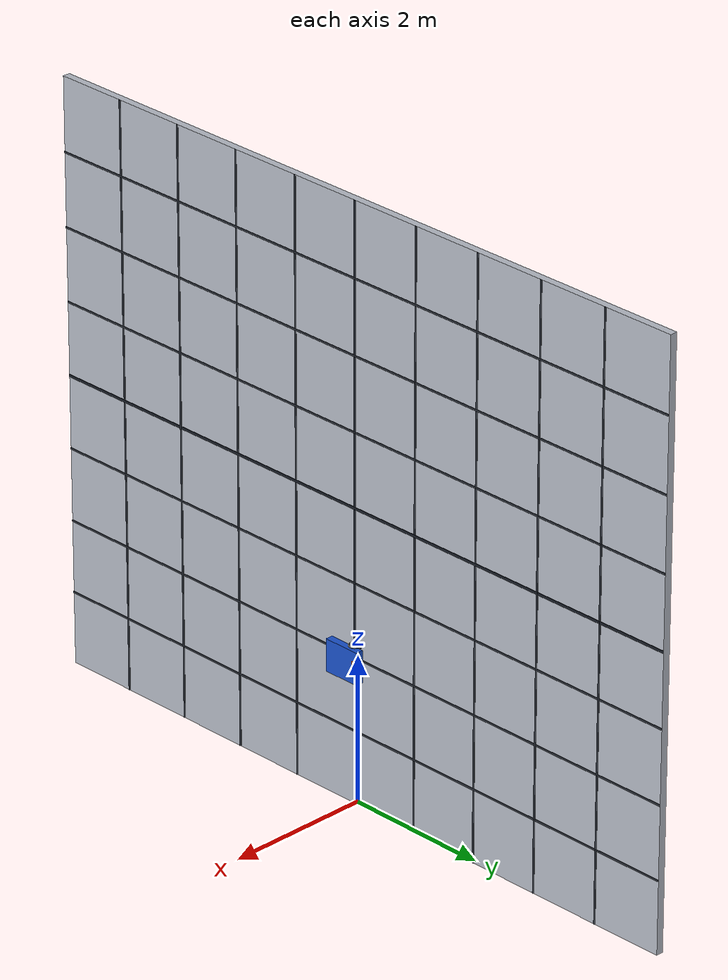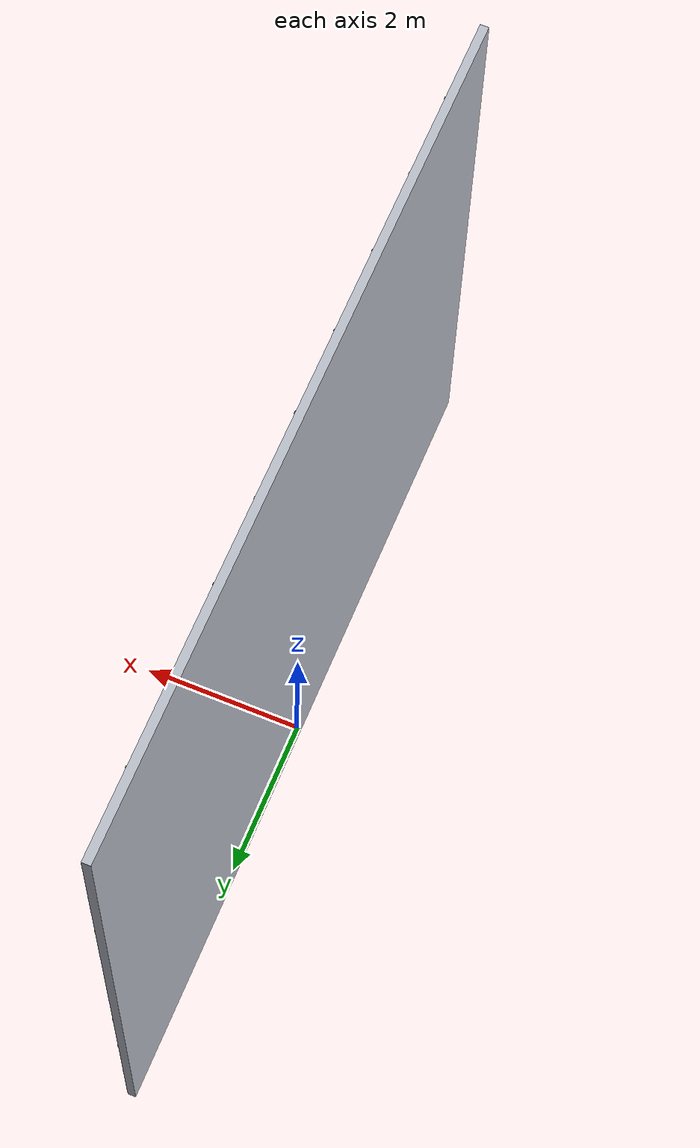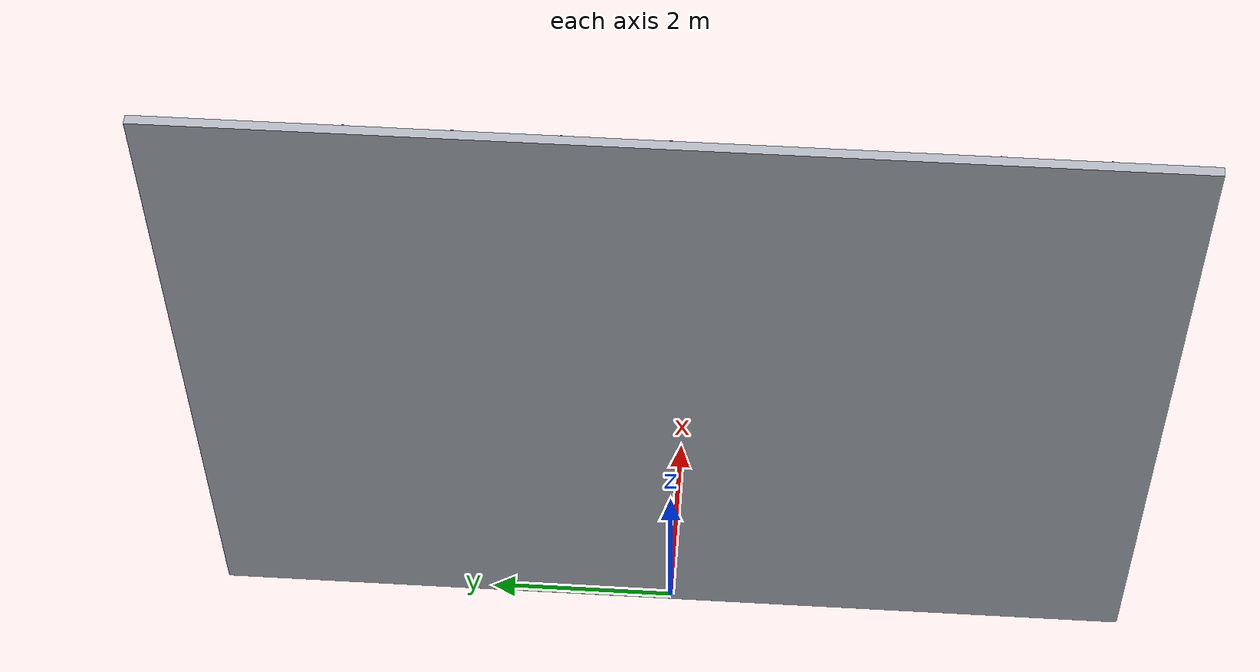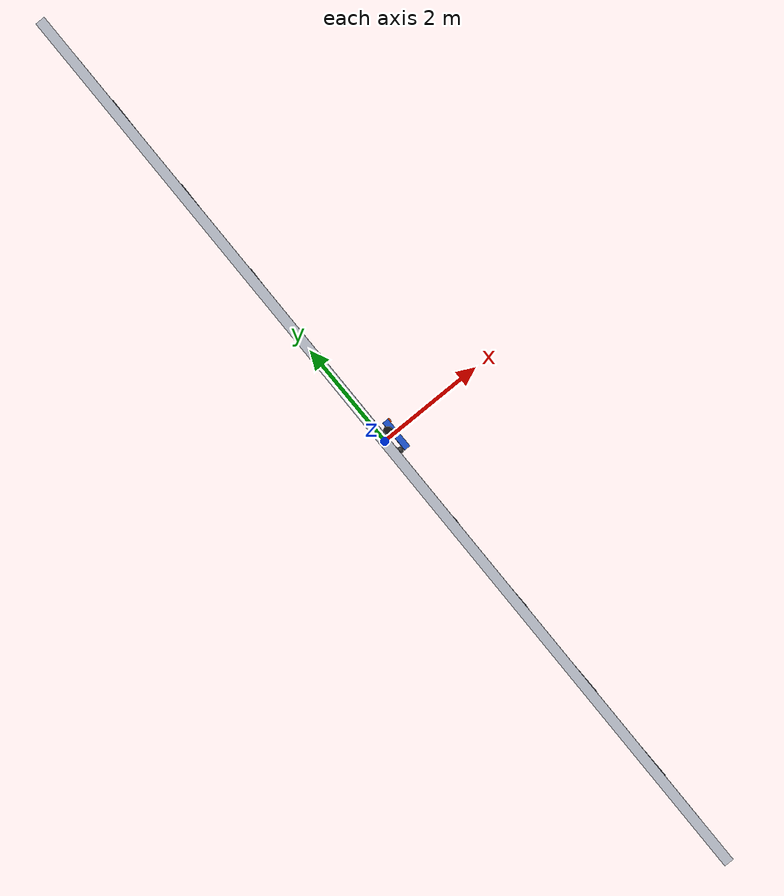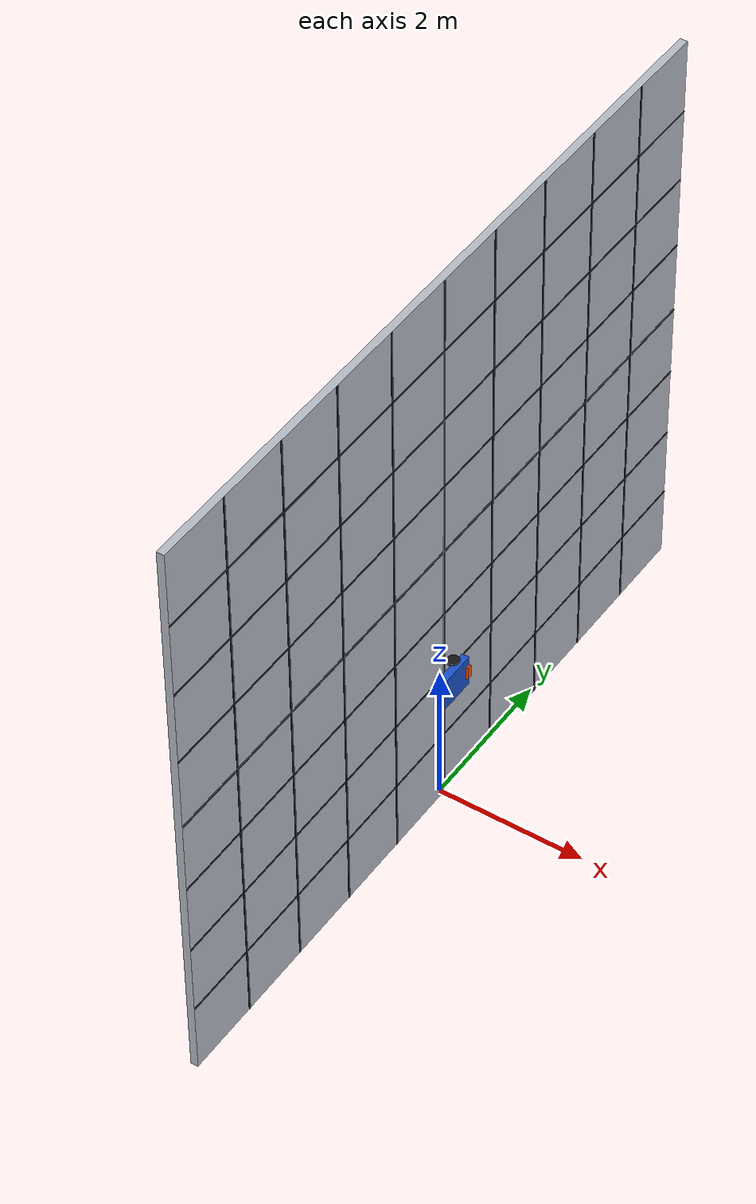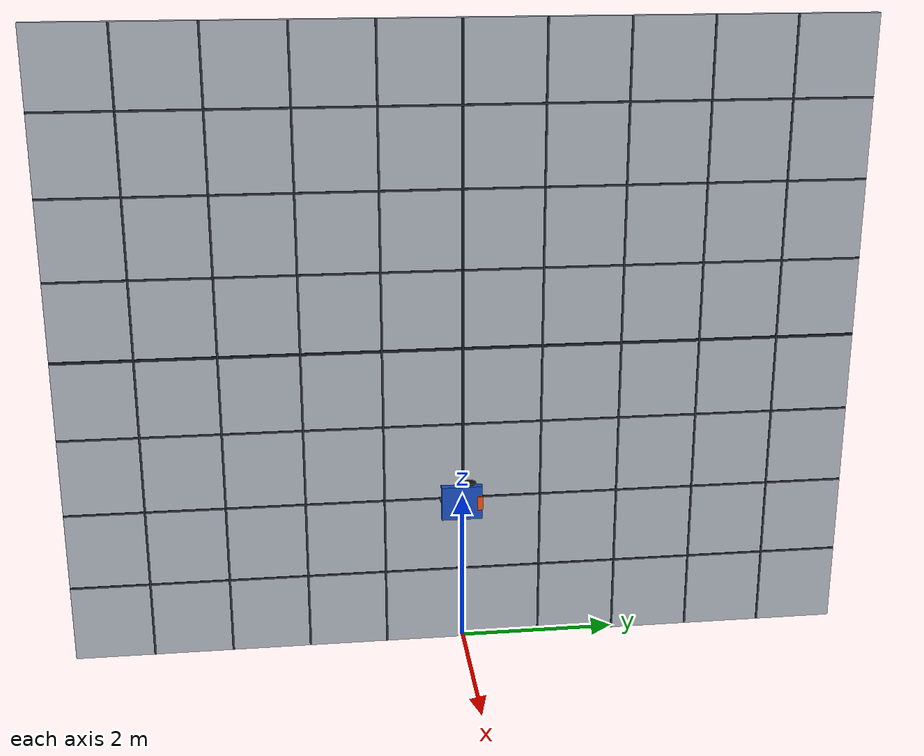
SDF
<?xml version="1.0"?>
<sdf version="1.10">
  <world name="climbot_wall">
    <gravity>0 0 -9.81</gravity>
    <physics name="physics" type="ignored">
      <max_step_size>0.001</max_step_size>
      <real_time_factor>1.0</real_time_factor>
    </physics>

    <plugin filename="gz-sim-physics-system"
            name="gz::sim::systems::Physics"/>
    <plugin filename="gz-sim-user-commands-system"
            name="gz::sim::systems::UserCommands"/>
    <plugin filename="gz-sim-scene-broadcaster-system"
            name="gz::sim::systems::SceneBroadcaster"/>
    <plugin filename="gz-sim-imu-system"
            name="gz::sim::systems::Imu"/>
    <!-- Required for the wheel contact sensors that record wall normal loads. -->
    <plugin filename="gz-sim-contact-system"
            name="gz::sim::systems::Contact"/>
    <plugin filename="gz-sim-sensors-system"
            name="gz::sim::systems::Sensors">
      <render_engine>ogre2</render_engine>
    </plugin>
    <plugin filename="gz-sim-apply-link-wrench-system"
            name="gz::sim::systems::ApplyLinkWrench">
      <persistent>
        <entity_name>climbot</entity_name>
        <entity_type>model</entity_type>
        <force>-220 0 0</force>
        <torque>0 0 0</torque>
      </persistent>
    </plugin>

    <light type="directional" name="sun">
      <cast_shadows>true</cast_shadows>
      <pose>4 -2 8 0 0 0</pose>
      <diffuse>0.9 0.9 0.9 1</diffuse>
      <specular>0.3 0.3 0.3 1</specular>
      <direction>-1 0.2 -0.4</direction>
    </light>

    <model name="wall">
      <static>true</static>
      <link name="wall_link">
        <pose>0 0 4 0 0 0</pose>
        <collision name="wall_collision">
          <geometry>
            <box>
              <size>0.10 10.0 8.0</size>
            </box>
          </geometry>
          <surface>
            <friction>
              <ode>
                <mu>1.1</mu>
                <mu2>1.1</mu2>
              </ode>
            </friction>
          </surface>
        </collision>
        <visual name="wall_visual">
          <geometry>
            <box>
              <size>0.10 10.0 8.0</size>
            </box>
          </geometry>
          <material>
            <ambient>0.62 0.64 0.68 1</ambient>
            <diffuse>0.72 0.74 0.78 1</diffuse>
            <specular>0.12 0.12 0.12 1</specular>
          </material>
        </visual>
        <!-- High-contrast one-metre grid on the 10 m x 8 m wall front face. -->
        <visual name="grid_vertical_m4">
          <pose>0.053 -4 0 0 0 0</pose>
          <geometry><box><size>0.006 0.025 8.0</size></box></geometry>
          <material><ambient>0.18 0.20 0.24 1</ambient><diffuse>0.18 0.20 0.24 1</diffuse></material>
        </visual>
        <visual name="grid_vertical_m3">
          <pose>0.053 -3 0 0 0 0</pose>
          <geometry><box><size>0.006 0.025 8.0</size></box></geometry>
          <material><ambient>0.18 0.20 0.24 1</ambient><diffuse>0.18 0.20 0.24 1</diffuse></material>
        </visual>
        <visual name="grid_vertical_m2">
          <pose>0.053 -2 0 0 0 0</pose>
          <geometry><box><size>0.006 0.025 8.0</size></box></geometry>
          <material><ambient>0.18 0.20 0.24 1</ambient><diffuse>0.18 0.20 0.24 1</diffuse></material>
        </visual>
        <visual name="grid_vertical_m1">
          <pose>0.053 -1 0 0 0 0</pose>
          <geometry><box><size>0.006 0.025 8.0</size></box></geometry>
          <material><ambient>0.18 0.20 0.24 1</ambient><diffuse>0.18 0.20 0.24 1</diffuse></material>
        </visual>
        <visual name="grid_vertical_0">
          <pose>0.053 0 0 0 0 0</pose>
          <geometry><box><size>0.006 0.035 8.0</size></box></geometry>
          <material><ambient>0.10 0.12 0.16 1</ambient><diffuse>0.10 0.12 0.16 1</diffuse></material>
        </visual>
        <visual name="grid_vertical_p1">
          <pose>0.053 1 0 0 0 0</pose>
          <geometry><box><size>0.006 0.025 8.0</size></box></geometry>
          <material><ambient>0.18 0.20 0.24 1</ambient><diffuse>0.18 0.20 0.24 1</diffuse></material>
        </visual>
        <visual name="grid_vertical_p2">
          <pose>0.053 2 0 0 0 0</pose>
          <geometry><box><size>0.006 0.025 8.0</size></box></geometry>
          <material><ambient>0.18 0.20 0.24 1</ambient><diffuse>0.18 0.20 0.24 1</diffuse></material>
        </visual>
        <visual name="grid_vertical_p3">
          <pose>0.053 3 0 0 0 0</pose>
          <geometry><box><size>0.006 0.025 8.0</size></box></geometry>
          <material><ambient>0.18 0.20 0.24 1</ambient><diffuse>0.18 0.20 0.24 1</diffuse></material>
        </visual>
        <visual name="grid_vertical_p4">
          <pose>0.053 4 0 0 0 0</pose>
          <geometry><box><size>0.006 0.025 8.0</size></box></geometry>
          <material><ambient>0.18 0.20 0.24 1</ambient><diffuse>0.18 0.20 0.24 1</diffuse></material>
        </visual>
        <visual name="grid_horizontal_m3">
          <pose>0.053 0 -3 0 0 0</pose>
          <geometry><box><size>0.006 10.0 0.025</size></box></geometry>
          <material><ambient>0.18 0.20 0.24 1</ambient><diffuse>0.18 0.20 0.24 1</diffuse></material>
        </visual>
        <visual name="grid_horizontal_m2">
          <pose>0.053 0 -2 0 0 0</pose>
          <geometry><box><size>0.006 10.0 0.025</size></box></geometry>
          <material><ambient>0.18 0.20 0.24 1</ambient><diffuse>0.18 0.20 0.24 1</diffuse></material>
        </visual>
        <visual name="grid_horizontal_m1">
          <pose>0.053 0 -1 0 0 0</pose>
          <geometry><box><size>0.006 10.0 0.025</size></box></geometry>
          <material><ambient>0.18 0.20 0.24 1</ambient><diffuse>0.18 0.20 0.24 1</diffuse></material>
        </visual>
        <visual name="grid_horizontal_0">
          <pose>0.053 0 0 0 0 0</pose>
          <geometry><box><size>0.006 10.0 0.035</size></box></geometry>
          <material><ambient>0.10 0.12 0.16 1</ambient><diffuse>0.10 0.12 0.16 1</diffuse></material>
        </visual>
        <visual name="grid_horizontal_p1">
          <pose>0.053 0 1 0 0 0</pose>
          <geometry><box><size>0.006 10.0 0.025</size></box></geometry>
          <material><ambient>0.18 0.20 0.24 1</ambient><diffuse>0.18 0.20 0.24 1</diffuse></material>
        </visual>
        <visual name="grid_horizontal_p2">
          <pose>0.053 0 2 0 0 0</pose>
          <geometry><box><size>0.006 10.0 0.025</size></box></geometry>
          <material><ambient>0.18 0.20 0.24 1</ambient><diffuse>0.18 0.20 0.24 1</diffuse></material>
        </visual>
        <visual name="grid_horizontal_p3">
          <pose>0.053 0 3 0 0 0</pose>
          <geometry><box><size>0.006 10.0 0.025</size></box></geometry>
          <material><ambient>0.18 0.20 0.24 1</ambient><diffuse>0.18 0.20 0.24 1</diffuse></material>
        </visual>
      </link>
    </model>

    <include>
      <uri>model://climbot</uri>
      <!-- local +X -> world +Y, local +Y -> world +Z, local +Z -> world +X -->
      <pose>0.051 0 2.0 1.57079632679 0 1.57079632679</pose>
    </include>

    <gui fullscreen="false">
      <plugin filename="MinimalScene" name="3D View">
        <gz-gui>
          <title>Climbot Wall Simulation</title>
          <property type="bool" key="showTitleBar">false</property>
          <property type="string" key="state">docked</property>
        </gz-gui>
        <engine>ogre2</engine>
        <scene>scene</scene>
        <ambient_light>0.5 0.5 0.5</ambient_light>
        <background_color>0.12 0.14 0.18</background_color>
        <!-- Front-on view centred on the robot's initial pose. -->
        <camera_pose>2.8 0 2.0 0 0 3.14159265359</camera_pose>
      </plugin>
      <plugin filename="EntityContextMenuPlugin" name="Entity context menu">
        <gz-gui>
          <property key="state" type="string">floating</property>
          <property key="width" type="double">5</property>
          <property key="height" type="double">5</property>
          <property key="showTitleBar" type="bool">false</property>
        </gz-gui>
      </plugin>
      <plugin filename="GzSceneManager" name="Scene Manager">
        <gz-gui>
          <property key="resizable" type="bool">false</property>
          <property key="width" type="double">5</property>
          <property key="height" type="double">5</property>
          <property key="state" type="string">floating</property>
          <property key="showTitleBar" type="bool">false</property>
        </gz-gui>
      </plugin>
      <plugin filename="InteractiveViewControl" name="Interactive view control">
        <gz-gui>
          <property key="resizable" type="bool">false</property>
          <property key="width" type="double">5</property>
          <property key="height" type="double">5</property>
          <property key="state" type="string">floating</property>
          <property key="showTitleBar" type="bool">false</property>
        </gz-gui>
      </plugin>
      <plugin filename="CameraTracking" name="Camera Tracking">
        <gz-gui>
          <property key="resizable" type="bool">false</property>
          <property key="width" type="double">5</property>
          <property key="height" type="double">5</property>
          <property key="state" type="string">floating</property>
          <property key="showTitleBar" type="bool">false</property>
        </gz-gui>
      </plugin>
      <plugin filename="SelectEntities" name="Select Entities">
        <gz-gui>
          <property key="state" type="string">floating</property>
          <property key="width" type="double">5</property>
          <property key="height" type="double">5</property>
          <property key="showTitleBar" type="bool">false</property>
        </gz-gui>
      </plugin>
      <plugin filename="TransformControl" name="Transform control">
        <gz-gui>
          <property key="x" type="double">0</property>
          <property key="y" type="double">0</property>
          <property key="width" type="double">250</property>
          <property key="height" type="double">50</property>
          <property key="state" type="string">floating</property>
          <property key="showTitleBar" type="bool">false</property>
          <property key="cardBackground" type="string">#777777</property>
        </gz-gui>
      </plugin>
      <plugin filename="WorldControl" name="World control">
        <gz-gui>
          <title>World control</title>
          <property type="bool" key="showTitleBar">false</property>
          <property type="bool" key="resizable">false</property>
          <property type="double" key="height">72</property>
          <property type="double" key="width">121</property>
          <property type="double" key="z">1</property>
          <property type="string" key="state">floating</property>
        </gz-gui>
        <play_pause>true</play_pause>
        <step>true</step>
        <start_paused>false</start_paused>
      </plugin>
      <plugin filename="EntityTree" name="Entity tree">
        <gz-gui>
          <property type="string" key="state">docked</property>
          <property type="double" key="width">260</property>
        </gz-gui>
      </plugin>
      <plugin filename="ComponentInspector" name="Component inspector">
        <gz-gui>
          <property type="string" key="state">docked_collapsed</property>
        </gz-gui>
      </plugin>
    </gui>
  </world>
</sdf>

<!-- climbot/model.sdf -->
<sdf version="1.10">
  <model name="climbot" canonical_link="base_link">
    <self_collide>false</self_collide>

    <!--
      Robot frame follows REP 103: +X forward, +Y left, +Z away from
      the driving surface. The world rotates this model onto the wall.
    -->
    <link name="base_link">
      <pose>-0.03 0 0.15 0 0 0</pose>
      <inertial>
        <mass>12.0</mass>
        <inertia>
          <ixx>0.2036</ixx>
          <iyy>0.2804</iyy>
          <izz>0.4636</izz>
          <ixy>0</ixy>
          <ixz>0</ixz>
          <iyz>0</iyz>
        </inertia>
      </inertial>
      <collision name="base_collision">
        <geometry>
          <box>
            <size>0.52 0.44 0.10</size>
          </box>
        </geometry>
      </collision>
      <visual name="base_visual">
        <geometry>
          <box>
            <size>0.52 0.44 0.10</size>
          </box>
        </geometry>
        <material>
          <ambient>0.08 0.22 0.55 1</ambient>
          <diffuse>0.10 0.32 0.80 1</diffuse>
          <specular>0.25 0.25 0.25 1</specular>
        </material>
      </visual>
      <visual name="front_marker">
        <pose>0.23 0 0.061 0 0 0</pose>
        <geometry>
          <box>
            <size>0.07 0.18 0.025</size>
          </box>
        </geometry>
        <material>
          <ambient>0.9 0.25 0.05 1</ambient>
          <diffuse>1.0 0.32 0.05 1</diffuse>
        </material>
      </visual>

      <!-- The IMU is rigidly mounted at the body origin.  Its frame is
           base_link so robot_localization needs no unmodelled static TF. -->
      <sensor name="imu" type="imu">
        <always_on>true</always_on>
        <update_rate>100</update_rate>
        <topic>/imu</topic>
        <gz_frame_id>base_link</gz_frame_id>
        <imu>
          <angular_velocity>
            <x><noise type="gaussian"><mean>0</mean><stddev>0.0002</stddev></noise></x>
            <y><noise type="gaussian"><mean>0</mean><stddev>0.0002</stddev></noise></y>
            <z><noise type="gaussian"><mean>0</mean><stddev>0.0002</stddev></noise></z>
          </angular_velocity>
          <linear_acceleration>
            <x><noise type="gaussian"><mean>0</mean><stddev>0.017</stddev></noise></x>
            <y><noise type="gaussian"><mean>0</mean><stddev>0.017</stddev></noise></y>
            <z><noise type="gaussian"><mean>0</mean><stddev>0.017</stddev></noise></z>
          </linear_acceleration>
        </imu>
      </sensor>
    </link>

    <link name="left_wheel_link">
      <pose>0.08 0.215 0.08 1.57079632679 0 0</pose>
      <inertial>
        <mass>1.0</mass>
        <inertia>
          <ixx>0.00177</ixx>
          <iyy>0.00177</iyy>
          <izz>0.00320</izz>
          <ixy>0</ixy>
          <ixz>0</ixz>
          <iyz>0</iyz>
        </inertia>
      </inertial>
      <collision name="left_wheel_collision">
        <geometry>
          <cylinder>
            <radius>0.08</radius>
            <length>0.045</length>
          </cylinder>
        </geometry>
        <surface>
          <friction>
            <ode>
              <mu>1.1</mu>
              <mu2>1.1</mu2>
              <fdir1>0 0 1</fdir1>
            </ode>
          </friction>
        </surface>
      </collision>
      <visual name="left_wheel_visual">
        <geometry>
          <cylinder>
            <radius>0.08</radius>
            <length>0.045</length>
          </cylinder>
        </geometry>
        <material>
          <ambient>0.04 0.04 0.04 1</ambient>
          <diffuse>0.08 0.08 0.08 1</diffuse>
        </material>
      </visual>

      <!-- Wall-contact normal load, recorded for the load-distribution test.
           Evaluation only: no control loop consumes this. -->
      <sensor name="left_wheel_contact" type="contact">
        <always_on>true</always_on>
        <update_rate>50</update_rate>
        <contact>
          <collision>left_wheel_collision</collision>
        </contact>
      </sensor>
    </link>

    <link name="right_wheel_link">
      <pose>0.08 -0.215 0.08 1.57079632679 0 0</pose>
      <inertial>
        <mass>1.0</mass>
        <inertia>
          <ixx>0.00177</ixx>
          <iyy>0.00177</iyy>
          <izz>0.00320</izz>
          <ixy>0</ixy>
          <ixz>0</ixz>
          <iyz>0</iyz>
        </inertia>
      </inertial>
      <collision name="right_wheel_collision">
        <geometry>
          <cylinder>
            <radius>0.08</radius>
            <length>0.045</length>
          </cylinder>
        </geometry>
        <surface>
          <friction>
            <ode>
              <mu>1.1</mu>
              <mu2>1.1</mu2>
              <fdir1>0 0 1</fdir1>
            </ode>
          </friction>
        </surface>
      </collision>
      <visual name="right_wheel_visual">
        <geometry>
          <cylinder>
            <radius>0.08</radius>
            <length>0.045</length>
          </cylinder>
        </geometry>
        <material>
          <ambient>0.04 0.04 0.04 1</ambient>
          <diffuse>0.08 0.08 0.08 1</diffuse>
        </material>
      </visual>

      <sensor name="right_wheel_contact" type="contact">
        <always_on>true</always_on>
        <update_rate>50</update_rate>
        <contact>
          <collision>right_wheel_collision</collision>
        </contact>
      </sensor>
    </link>

    <link name="caster_ball_link">
      <pose>-0.25 0 0.05 0 0 0</pose>
      <inertial>
        <mass>0.5</mass>
        <inertia>
          <ixx>0.0005</ixx>
          <iyy>0.0005</iyy>
          <izz>0.0005</izz>
          <ixy>0</ixy>
          <ixz>0</ixz>
          <iyz>0</iyz>
        </inertia>
      </inertial>
      <collision name="caster_collision">
        <geometry>
          <sphere>
            <radius>0.05</radius>
          </sphere>
        </geometry>
        <surface>
          <friction>
            <ode>
              <mu>0.35</mu>
              <mu2>0.35</mu2>
            </ode>
          </friction>
        </surface>
      </collision>
      <visual name="caster_visual">
        <geometry>
          <sphere>
            <radius>0.05</radius>
          </sphere>
        </geometry>
        <material>
          <ambient>0.15 0.15 0.15 1</ambient>
          <diffuse>0.25 0.25 0.25 1</diffuse>
        </material>
      </visual>

      <sensor name="caster_contact" type="contact">
        <always_on>true</always_on>
        <update_rate>50</update_rate>
        <contact>
          <collision>caster_collision</collision>
        </contact>
      </sensor>
    </link>

    <joint name="left_wheel_joint" type="revolute">
      <parent>base_link</parent>
      <child>left_wheel_link</child>
      <axis>
        <xyz expressed_in="__model__">0 1 0</xyz>
        <limit>
          <lower>-1e16</lower>
          <upper>1e16</upper>
          <effort>80</effort>
          <velocity>30</velocity>
        </limit>
        <dynamics>
          <damping>0.05</damping>
        </dynamics>
      </axis>
    </joint>

    <joint name="right_wheel_joint" type="revolute">
      <parent>base_link</parent>
      <child>right_wheel_link</child>
      <axis>
        <xyz expressed_in="__model__">0 1 0</xyz>
        <limit>
          <lower>-1e16</lower>
          <upper>1e16</upper>
          <effort>80</effort>
          <velocity>30</velocity>
        </limit>
        <dynamics>
          <damping>0.05</damping>
        </dynamics>
      </axis>
    </joint>

    <joint name="caster_ball_joint" type="ball">
      <parent>base_link</parent>
      <child>caster_ball_link</child>
    </joint>

    <plugin filename="gz-sim-diff-drive-system"
            name="gz::sim::systems::DiffDrive">
      <left_joint>left_wheel_joint</left_joint>
      <right_joint>right_wheel_joint</right_joint>
      <wheel_separation>0.43</wheel_separation>
      <wheel_radius>0.08</wheel_radius>
      <topic>/cmd_vel</topic>
      <odom_topic>/model/climbot/odometry</odom_topic>
      <tf_topic>/model/climbot/tf</tf_topic>
      <frame_id>odom</frame_id>
      <child_frame_id>base_link</child_frame_id>
      <odom_publish_frequency>50</odom_publish_frequency>
      <max_linear_velocity>0.30</max_linear_velocity>
      <min_linear_velocity>-0.30</min_linear_velocity>
      <max_angular_velocity>1.20</max_angular_velocity>
      <min_angular_velocity>-1.20</min_angular_velocity>
      <max_linear_acceleration>0.40</max_linear_acceleration>
      <min_linear_acceleration>-0.40</min_linear_acceleration>
      <max_angular_acceleration>1.50</max_angular_acceleration>
      <min_angular_acceleration>-1.50</min_angular_acceleration>
    </plugin>

    <plugin filename="gz-sim-wheel-slip-system"
            name="gz::sim::systems::WheelSlip">
      <wheel link_name="left_wheel_link">
        <wheel_radius>0.08</wheel_radius>
        <wheel_normal_force>77.0</wheel_normal_force>
        <slip_compliance_lateral>0.12</slip_compliance_lateral>
        <slip_compliance_longitudinal>0.04</slip_compliance_longitudinal>
      </wheel>
      <wheel link_name="right_wheel_link">
        <wheel_radius>0.08</wheel_radius>
        <wheel_normal_force>77.0</wheel_normal_force>
        <slip_compliance_lateral>0.12</slip_compliance_lateral>
        <slip_compliance_longitudinal>0.04</slip_compliance_longitudinal>
      </wheel>
    </plugin>

    <plugin filename="gz-sim-pose-publisher-system"
            name="gz::sim::systems::PosePublisher">
      <publish_model_pose>true</publish_model_pose>
      <publish_link_pose>true</publish_link_pose>
      <use_pose_vector_msg>true</use_pose_vector_msg>
      <update_frequency>50</update_frequency>
    </plugin>

    <!-- Physical world pose only: this is evaluation truth, not an EKF input. -->
    <plugin filename="gz-sim-odometry-publisher-system"
            name="gz::sim::systems::OdometryPublisher">
      <odom_frame>odom</odom_frame>
      <robot_base_frame>base_link</robot_base_frame>
      <dimensions>3</dimensions>
      <odom_publish_frequency>100</odom_publish_frequency>
      <odom_topic>/model/climbot/ground_truth</odom_topic>
      <odom_covariance_topic>/model/climbot/ground_truth_with_covariance</odom_covariance_topic>
    </plugin>
  </model>
</sdf>
